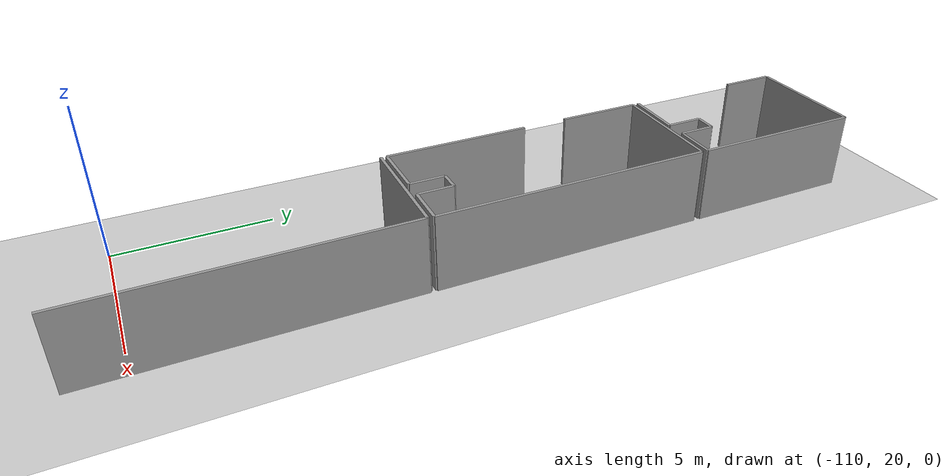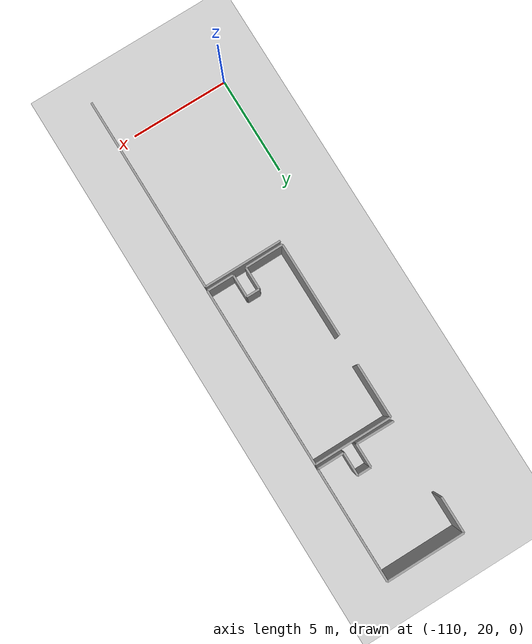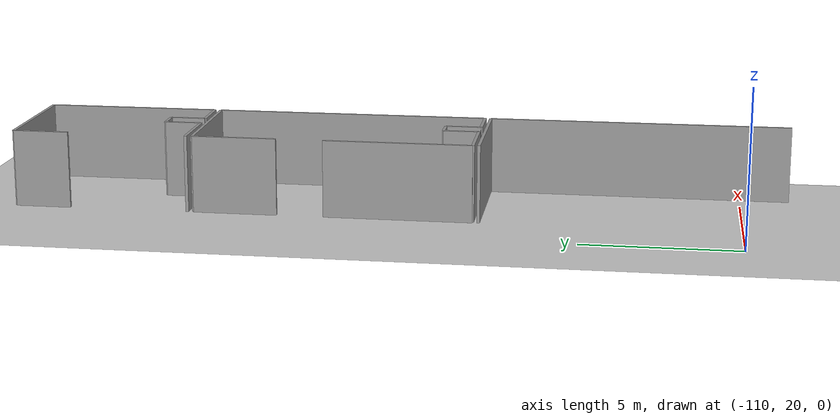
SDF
<sdf version="1.6">
 <world name="default">
  <model name="ground_plane">
   <static>1</static>
   <link name="link">
    <collision name="collision">
     <geometry><plane><normal>0 0 1</normal><size>100 100</size></plane></geometry>
     <surface><friction><ode><mu>100</mu><mu2>50</mu2></ode></friction></surface>
    </collision>
    <visual name="visual">
     <cast_shadows>0</cast_shadows>
     <geometry><plane><normal>0 0 1</normal><size>100 100</size></plane></geometry>
     <material>
      <script><uri>file://media/materials/scripts/gazebo.material</uri><name>Gazebo/Grey</name></script>
     </material>
    </visual>
   </link>
  </model>
  <model name="50015847">
   <static>1</static>
   <link name="Wall_6">
    <collision name="Wall_6_Collision">
     <geometry><box><size>1.8065795495 0.1 2.5</size></box></geometry>
     <pose>0.90328977475 0 1.25 0 0 0</pose>
    </collision>
    <visual name="Wall_6_Visual">
     <pose>0.90328977475 0 1.25 0 0 0</pose>
     <geometry><box><size>1.8065795495 0.1 2.5</size></box></geometry>
     <material>
      <script><uri>file://media/materials/scripts/gazebo.material</uri><name>Gazebo/Grey</name></script>
      <ambient>1 1 1 1</ambient>
     </material>
    </visual>
    <pose>24.3161132862 -2.41445060253 0 0 0 1.57079632679</pose>
   </link>
   <link name="Wall_7">
    <collision name="Wall_7_Collision">
     <geometry><box><size>3.93934001119 0.1 2.5</size></box></geometry>
     <pose>1.96967000559 0 1.25 0 0 0</pose>
    </collision>
    <visual name="Wall_7_Visual">
     <pose>1.96967000559 0 1.25 0 0 0</pose>
     <geometry><box><size>3.93934001119 0.1 2.5</size></box></geometry>
     <material>
      <script><uri>file://media/materials/scripts/gazebo.material</uri><name>Gazebo/Grey</name></script>
      <ambient>1 1 1 1</ambient>
     </material>
    </visual>
    <pose>24.3161132862 -0.607871053033 0 0 0 0.0</pose>
   </link>
   <link name="Wall_8">
    <collision name="Wall_8_Collision">
     <geometry><box><size>5.67727665633 0.1 2.5</size></box></geometry>
     <pose>2.83863832816 0 1.25 0 0 0</pose>
    </collision>
    <visual name="Wall_8_Visual">
     <pose>2.83863832816 0 1.25 0 0 0</pose>
     <geometry><box><size>5.67727665633 0.1 2.5</size></box></geometry>
     <material>
      <script><uri>file://media/materials/scripts/gazebo.material</uri><name>Gazebo/Grey</name></script>
      <ambient>1 1 1 1</ambient>
     </material>
    </visual>
    <pose>28.2554532974 -0.607871053033 0 0 0 -1.57079632679</pose>
   </link>
   <link name="Wall_9">
    <collision name="Wall_9_Collision">
     <geometry><box><size>1.33828240199 0.1 2.5</size></box></geometry>
     <pose>0.669141200997 0 1.25 0 0 0</pose>
    </collision>
    <visual name="Wall_9_Visual">
     <pose>0.669141200997 0 1.25 0 0 0</pose>
     <geometry><box><size>1.33828240199 0.1 2.5</size></box></geometry>
     <material>
      <script><uri>file://media/materials/scripts/gazebo.material</uri><name>Gazebo/Grey</name></script>
      <ambient>1 1 1 1</ambient>
     </material>
    </visual>
    <pose>28.2554532974 -6.28514770936 0 0 0 3.14159265359</pose>
   </link>
   <link name="Wall_10">
    <collision name="Wall_10_Collision">
     <geometry><box><size>1.15650582194 0.1 2.5</size></box></geometry>
     <pose>0.578252910968 0 1.25 0 0 0</pose>
    </collision>
    <visual name="Wall_10_Visual">
     <pose>0.578252910968 0 1.25 0 0 0</pose>
     <geometry><box><size>1.15650582194 0.1 2.5</size></box></geometry>
     <material>
      <script><uri>file://media/materials/scripts/gazebo.material</uri><name>Gazebo/Grey</name></script>
      <ambient>1 1 1 1</ambient>
     </material>
    </visual>
    <pose>26.9171708954 -6.28514770936 0 0 0 1.57079632679</pose>
   </link>
   <link name="Wall_11">
    <collision name="Wall_11_Collision">
     <geometry><box><size>0.678547821223 0.1 2.5</size></box></geometry>
     <pose>0.339273910612 0 1.25 0 0 0</pose>
    </collision>
    <visual name="Wall_11_Visual">
     <pose>0.339273910612 0 1.25 0 0 0</pose>
     <geometry><box><size>0.678547821223 0.1 2.5</size></box></geometry>
     <material>
      <script><uri>file://media/materials/scripts/gazebo.material</uri><name>Gazebo/Grey</name></script>
      <ambient>1 1 1 1</ambient>
     </material>
    </visual>
    <pose>26.9171708954 -5.12864188743 0 0 0 3.14159265359</pose>
   </link>
   <link name="Wall_12">
    <collision name="Wall_12_Collision">
     <geometry><box><size>1.18523414857 0.1 2.5</size></box></geometry>
     <pose>0.592617074287 0 1.25 0 0 0</pose>
    </collision>
    <visual name="Wall_12_Visual">
     <pose>0.592617074287 0 1.25 0 0 0</pose>
     <geometry><box><size>1.18523414857 0.1 2.5</size></box></geometry>
     <material>
      <script><uri>file://media/materials/scripts/gazebo.material</uri><name>Gazebo/Grey</name></script>
      <ambient>1 1 1 1</ambient>
     </material>
    </visual>
    <pose>26.2386230742 -5.12864188743 0 0 0 -1.57079632679</pose>
   </link>
   <link name="Wall_13">
    <collision name="Wall_13_Collision">
     <geometry><box><size>1.92265517133 0.1 2.5</size></box></geometry>
     <pose>0.961327585664 0 1.25 0 0 0</pose>
    </collision>
    <visual name="Wall_13_Visual">
     <pose>0.961327585664 0 1.25 0 0 0</pose>
     <geometry><box><size>1.92265517133 0.1 2.5</size></box></geometry>
     <material>
      <script><uri>file://media/materials/scripts/gazebo.material</uri><name>Gazebo/Grey</name></script>
      <ambient>1 1 1 1</ambient>
     </material>
    </visual>
    <pose>26.2386230742 -6.313876036 0 0 0 3.1292949398</pose>
   </link>
   <link name="Wall_82">
    <collision name="Wall_82_Collision">
     <geometry><box><size>3.9123913154 0.1 2.5</size></box></geometry>
     <pose>1.9561956577 0 1.25 0 0 0</pose>
    </collision>
    <visual name="Wall_82_Visual">
     <pose>1.9561956577 0 1.25 0 0 0</pose>
     <geometry><box><size>3.9123913154 0.1 2.5</size></box></geometry>
     <material>
      <script><uri>file://media/materials/scripts/gazebo.material</uri><name>Gazebo/Grey</name></script>
      <ambient>1 1 1 1</ambient>
     </material>
    </visual>
    <pose>24.3247572075 -15.6973610617 0 0 0 0.0</pose>
   </link>
   <link name="Wall_83">
    <collision name="Wall_83_Collision">
     <geometry><box><size>9.82152844867 0.1 2.5</size></box></geometry>
     <pose>4.91076422434 0 1.25 0 0 0</pose>
    </collision>
    <visual name="Wall_83_Visual">
     <pose>4.91076422434 0 1.25 0 0 0</pose>
     <geometry><box><size>9.82152844867 0.1 2.5</size></box></geometry>
     <material>
      <script><uri>file://media/materials/scripts/gazebo.material</uri><name>Gazebo/Grey</name></script>
      <ambient>1 1 1 1</ambient>
     </material>
    </visual>
    <pose>28.2371485229 -15.6973610617 0 0 0 -1.57079632679</pose>
   </link>
   <link name="Wall_89">
    <collision name="Wall_89_Collision">
     <geometry><box><size>4.76966492093 0.1 2.5</size></box></geometry>
     <pose>2.38483246047 0 1.25 0 0 0</pose>
    </collision>
    <visual name="Wall_89_Visual">
     <pose>2.38483246047 0 1.25 0 0 0</pose>
     <geometry><box><size>4.76966492093 0.1 2.5</size></box></geometry>
     <material>
      <script><uri>file://media/materials/scripts/gazebo.material</uri><name>Gazebo/Grey</name></script>
      <ambient>1 1 1 1</ambient>
     </material>
    </visual>
    <pose>24.3367061575 -15.5082117252 0 0 0 1.57079632679</pose>
   </link>
   <link name="Wall_90">
    <collision name="Wall_90_Collision">
     <geometry><box><size>2.7238521381 0.1 2.5</size></box></geometry>
     <pose>1.36192606905 0 1.25 0 0 0</pose>
    </collision>
    <visual name="Wall_90_Visual">
     <pose>1.36192606905 0 1.25 0 0 0</pose>
     <geometry><box><size>2.7238521381 0.1 2.5</size></box></geometry>
     <material>
      <script><uri>file://media/materials/scripts/gazebo.material</uri><name>Gazebo/Grey</name></script>
      <ambient>1 1 1 1</ambient>
     </material>
    </visual>
    <pose>24.3367061575 -9.23145370417 0 0 0 1.57079632679</pose>
   </link>
   <link name="Wall_91">
    <collision name="Wall_91_Collision">
     <geometry><box><size>3.91315401434 0.1 2.5</size></box></geometry>
     <pose>1.95657700717 0 1.25 0 0 0</pose>
    </collision>
    <visual name="Wall_91_Visual">
     <pose>1.95657700717 0 1.25 0 0 0</pose>
     <geometry><box><size>3.91315401434 0.1 2.5</size></box></geometry>
     <material>
      <script><uri>file://media/materials/scripts/gazebo.material</uri><name>Gazebo/Grey</name></script>
      <ambient>1 1 1 1</ambient>
     </material>
    </visual>
    <pose>24.3367061575 -6.50760156608 0 0 0 0.0</pose>
   </link>
   <link name="Wall_92">
    <collision name="Wall_92_Collision">
     <geometry><box><size>8.99552549957 0.1 2.5</size></box></geometry>
     <pose>4.49776274978 0 1.25 0 0 0</pose>
    </collision>
    <visual name="Wall_92_Visual">
     <pose>4.49776274978 0 1.25 0 0 0</pose>
     <geometry><box><size>8.99552549957 0.1 2.5</size></box></geometry>
     <material>
      <script><uri>file://media/materials/scripts/gazebo.material</uri><name>Gazebo/Grey</name></script>
      <ambient>1 1 1 1</ambient>
     </material>
    </visual>
    <pose>28.2498601719 -6.50760156608 0 0 0 -1.57079632679</pose>
   </link>
   <link name="Wall_93">
    <collision name="Wall_93_Collision">
     <geometry><box><size>1.33853663497 0.1 2.5</size></box></geometry>
     <pose>0.669268317486 0 1.25 0 0 0</pose>
    </collision>
    <visual name="Wall_93_Visual">
     <pose>0.669268317486 0 1.25 0 0 0</pose>
     <geometry><box><size>1.33853663497 0.1 2.5</size></box></geometry>
     <material>
      <script><uri>file://media/materials/scripts/gazebo.material</uri><name>Gazebo/Grey</name></script>
      <ambient>1 1 1 1</ambient>
     </material>
    </visual>
    <pose>28.2498601719 -15.5031270656 0 0 0 3.14159265359</pose>
   </link>
   <link name="Wall_94">
    <collision name="Wall_94_Collision">
     <geometry><box><size>1.15014999746 0.1 2.5</size></box></geometry>
     <pose>0.575074998729 0 1.25 0 0 0</pose>
    </collision>
    <visual name="Wall_94_Visual">
     <pose>0.575074998729 0 1.25 0 0 0</pose>
     <geometry><box><size>1.15014999746 0.1 2.5</size></box></geometry>
     <material>
      <script><uri>file://media/materials/scripts/gazebo.material</uri><name>Gazebo/Grey</name></script>
      <ambient>1 1 1 1</ambient>
     </material>
    </visual>
    <pose>26.9113235369 -15.5031270656 0 0 0 1.57079632679</pose>
   </link>
   <link name="Wall_95">
    <collision name="Wall_95_Collision">
     <geometry><box><size>0.65973458077 0.1 2.5</size></box></geometry>
     <pose>0.329867290385 0 1.25 0 0 0</pose>
    </collision>
    <visual name="Wall_95_Visual">
     <pose>0.329867290385 0 1.25 0 0 0</pose>
     <geometry><box><size>0.65973458077 0.1 2.5</size></box></geometry>
     <material>
      <script><uri>file://media/materials/scripts/gazebo.material</uri><name>Gazebo/Grey</name></script>
      <ambient>1 1 1 1</ambient>
     </material>
    </visual>
    <pose>26.9113235369 -14.3529770682 0 0 0 3.14159265359</pose>
   </link>
   <link name="Wall_96">
    <collision name="Wall_96_Collision">
     <geometry><box><size>1.14379417298 0.1 2.5</size></box></geometry>
     <pose>0.57189708649 0 1.25 0 0 0</pose>
    </collision>
    <visual name="Wall_96_Visual">
     <pose>0.57189708649 0 1.25 0 0 0</pose>
     <geometry><box><size>1.14379417298 0.1 2.5</size></box></geometry>
     <material>
      <script><uri>file://media/materials/scripts/gazebo.material</uri><name>Gazebo/Grey</name></script>
      <ambient>1 1 1 1</ambient>
     </material>
    </visual>
    <pose>26.2515889561 -14.3529770682 0 0 0 -1.57079632679</pose>
   </link>
   <link name="Wall_97">
    <collision name="Wall_97_Collision">
     <geometry><box><size>1.91491697393 0.1 2.5</size></box></geometry>
     <pose>0.957458486964 0 1.25 0 0 0</pose>
    </collision>
    <visual name="Wall_97_Visual">
     <pose>0.957458486964 0 1.25 0 0 0</pose>
     <geometry><box><size>1.91491697393 0.1 2.5</size></box></geometry>
     <material>
      <script><uri>file://media/materials/scripts/gazebo.material</uri><name>Gazebo/Grey</name></script>
      <ambient>1 1 1 1</ambient>
     </material>
    </visual>
    <pose>26.2515889561 -15.4967712412 0 0 0 -3.13561821591</pose>
   </link>
   <pose>-132.35 43.9162226064 0 0 0 0</pose>
  </model>
 </world>
</sdf>
